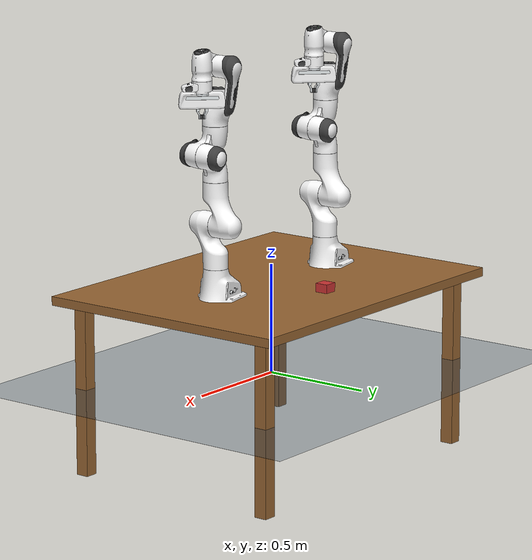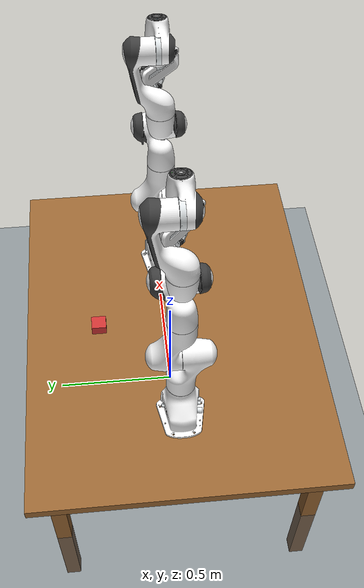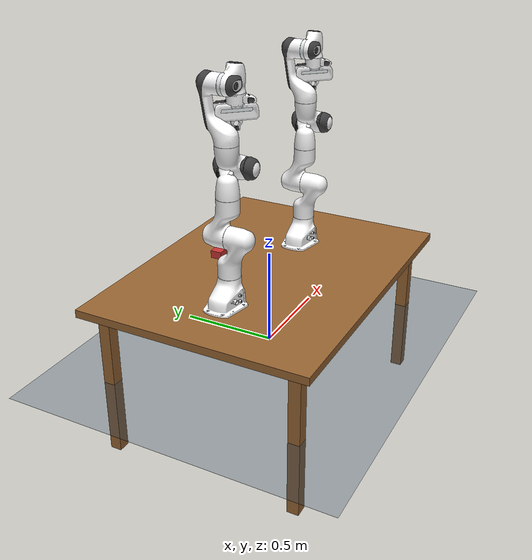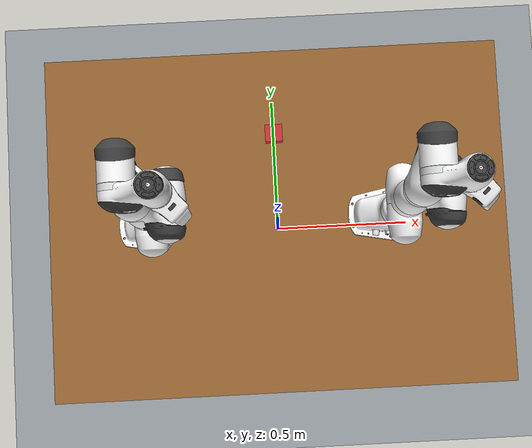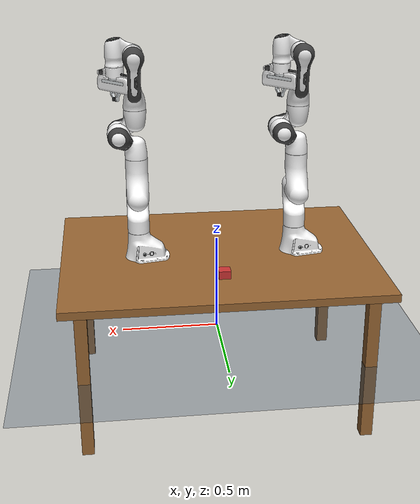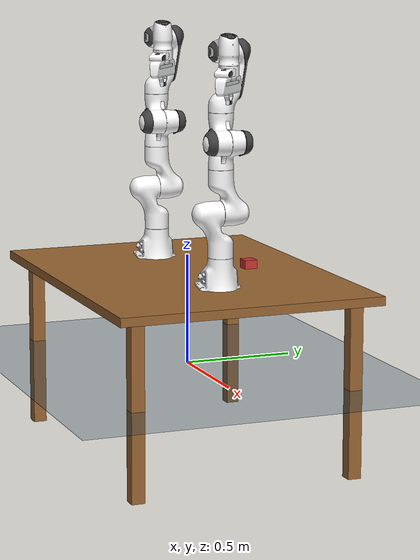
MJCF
<mujoco model="dual_panda_on_table">
  <compiler angle="radian" meshdir="franka_emika_panda/assets" autolimits="true"/>
  <visual>
    <quality shadowsize="2048"/>
    <global offwidth="1920" offheight="1080"/>
    <map znear="0.01" zfar="50"/>
</visual>
  <option integrator="implicitfast" timestep="0.002"/>

  <default>
    <!-- 全局默认 -->
    <default class="panda_arm">
    <material specular="0.5" shininess="0.25"/>
    <joint armature="0.1" damping="1" axis="0 0 1" range="-2.8973 2.8973"/>
    <general dyntype="none" biastype="affine" ctrlrange="-2.8973 2.8973" forcerange="-87 87"/>

    <default class="finger">
      <joint axis="0 1 0" type="slide" range="0 0.04"/>
    </default>

    <default class="visual">
      <geom type="mesh" contype="0" conaffinity="0" group="2"/>
    </default>

    <default class="collision">
      <geom type="mesh" group="3"/>
      <default class="fingertip_pad_collision_1">
        <geom type="box" size="0.0085 0.004 0.0085" pos="0 0.0055 0.0445"/>
      </default>
      <default class="fingertip_pad_collision_2">
        <geom type="box" size="0.003 0.002 0.003" pos="0.0055 0.002 0.05"/>
      </default>
      <default class="fingertip_pad_collision_3">
        <geom type="box" size="0.003 0.002 0.003" pos="-0.0055 0.002 0.05"/>
      </default>
      <default class="fingertip_pad_collision_4">
        <geom type="box" size="0.003 0.002 0.0035" pos="0.0055 0.002 0.0395"/>
      </default>
      <default class="fingertip_pad_collision_5">
        <geom type="box" size="0.003 0.002 0.0035" pos="-0.0055 0.002 0.0395"/>
      </default>
    </default>
  </default>
  </default>

  <asset>
    <!-- 材质 -->
    <material name="white" rgba="1 1 1 1"/>
    <material name="off_white" rgba="0.901961 0.921569 0.929412 1"/>
    <material name="black" rgba="0.25 0.25 0.25 1"/>
    <material name="green" rgba="0 1 0 1"/>
    <material name="light_blue" rgba="0.039216 0.541176 0.780392 1"/>
    <material name="table_mat" rgba="0.6 0.4 0.2 1"/>

    <!-- 注意：所有 mesh 文件必须存在于 models/assets/ 目录 -->
    <!-- 为左右臂共用同一套 mesh（无需复制） -->

    <!-- Collision meshes -->
    <mesh name="link0_c" file="link0.stl"/>
    <mesh name="link1_c" file="link1.stl"/>
    <mesh name="link2_c" file="link2.stl"/>
    <mesh name="link3_c" file="link3.stl"/>
    <mesh name="link4_c" file="link4.stl"/>
    <mesh name="link5_c0" file="link5_collision_0.obj"/>
    <mesh name="link5_c1" file="link5_collision_1.obj"/>
    <mesh name="link5_c2" file="link5_collision_2.obj"/>
    <mesh name="link6_c" file="link6.stl"/>
    <mesh name="link7_c" file="link7.stl"/>
    <mesh name="hand_c" file="hand.stl"/>

    <!-- Visual meshes (共用) -->
    <mesh file="link0_0.obj"/>
    <mesh file="link0_1.obj"/>
    <mesh file="link0_2.obj"/>
    <mesh file="link0_3.obj"/>
    <mesh file="link0_4.obj"/>
    <mesh file="link0_5.obj"/>
    <mesh file="link0_7.obj"/>
    <mesh file="link0_8.obj"/>
    <mesh file="link0_9.obj"/>
    <mesh file="link0_10.obj"/>
    <mesh file="link0_11.obj"/>
    <mesh file="link1.obj"/>
    <mesh file="link2.obj"/>
    <mesh file="link3_0.obj"/>
    <mesh file="link3_1.obj"/>
    <mesh file="link3_2.obj"/>
    <mesh file="link3_3.obj"/>
    <mesh file="link4_0.obj"/>
    <mesh file="link4_1.obj"/>
    <mesh file="link4_2.obj"/>
    <mesh file="link4_3.obj"/>
    <mesh file="link5_0.obj"/>
    <mesh file="link5_1.obj"/>
    <mesh file="link5_2.obj"/>
    <mesh file="link6_0.obj"/>
    <mesh file="link6_1.obj"/>
    <mesh file="link6_2.obj"/>
    <mesh file="link6_3.obj"/>
    <mesh file="link6_4.obj"/>
    <mesh file="link6_5.obj"/>
    <mesh file="link6_6.obj"/>
    <mesh file="link6_7.obj"/>
    <mesh file="link6_8.obj"/>
    <mesh file="link6_9.obj"/>
    <mesh file="link6_10.obj"/>
    <mesh file="link6_11.obj"/>
    <mesh file="link6_12.obj"/>
    <mesh file="link6_13.obj"/>
    <mesh file="link6_14.obj"/>
    <mesh file="link6_15.obj"/>
    <mesh file="link6_16.obj"/>
    <mesh file="link7_0.obj"/>
    <mesh file="link7_1.obj"/>
    <mesh file="link7_2.obj"/>
    <mesh file="link7_3.obj"/>
    <mesh file="link7_4.obj"/>
    <mesh file="link7_5.obj"/>
    <mesh file="link7_6.obj"/>
    <mesh file="link7_7.obj"/>
    <mesh file="hand_0.obj"/>
    <mesh file="hand_1.obj"/>
    <mesh file="hand_2.obj"/>
    <mesh file="hand_3.obj"/>
    <mesh file="hand_4.obj"/>
    <mesh file="finger_0.obj"/>
    <mesh file="finger_1.obj"/>

    <texture name="grid" type="2d" builtin="checker" rgb1=".1 .2 .3" rgb2=".2 .3 .4" width="300" height="300" mark="edge" markrgb=".8 .8 .8"/>
    <material name="grid_mat" texture="grid" texrepeat="1 1" texuniform="true"/>

    <texture name="skybox" type="skybox" builtin="gradient" rgb1=".3 .5 .7" rgb2="0 0 0" width="512" height="512"/>
  </asset>

  <worldbody>
    <!-- 灯光 -->
    <light directional="true" diffuse=".2 .2 .2" specular="0 0 0" pos="0 0 5" dir="0 0 -1"/>

    <light directional="true" diffuse="0.8 0.8 0.8" specular="0.3 0.3 0.3" pos="0 0 4" dir="0 0 -1" castshadow="true"/>

    <light directional="true" diffuse="0.4 0.4 0.4" pos="1 1 3" dir="-1 -1 -1"/>
    <light directional="true" diffuse="0.4 0.4 0.4" pos="-1 1 3" dir="1 -1 -1"/>
    <geom name="floor" pos="0 0 0" size="0 0 .05" type="plane" material="grid_mat"/>

    <!-- 桌子 -->
    <body name="table" pos="0 0 0.4">
      <geom name="table_top" type="box" size="0.8 0.6 0.02" material="table_mat" contype="1" conaffinity="1"/>
      <geom name="leg1" type="box" size="0.03 0.03 0.4" pos="-0.7 -0.5 -0.4" material="table_mat"/>
      <geom name="leg2" type="box" size="0.03 0.03 0.4" pos="0.7 -0.5 -0.4" material="table_mat"/>
      <geom name="leg3" type="box" size="0.03 0.03 0.4" pos="-0.7 0.5 -0.4" material="table_mat"/>
      <geom name="leg4" type="box" size="0.03 0.03 0.4" pos="0.7 0.5 -0.4" material="table_mat"/>
    </body>
    <camera name="track" mode="targetbody" target="table" pos="3 3 20"/>
    <!-- 左臂基座 (x = -0.4, y=0, z=table_top_z=0.42) -->
    <body name="left_link0" pos="-0.4 0 0.42" childclass="panda_arm">
      <inertial mass="0.629769" pos="-0.041018 -0.00014 0.049974"
        fullinertia="0.00315 0.00388 0.004285 8.2904e-7 0.00015 8.2299e-6"/>
      <geom mesh="link0_0" material="off_white" class="visual"/>
      <geom mesh="link0_1" material="black" class="visual"/>
      <geom mesh="link0_2" material="off_white" class="visual"/>
      <geom mesh="link0_3" material="black" class="visual"/>
      <geom mesh="link0_4" material="off_white" class="visual"/>
      <geom mesh="link0_5" material="black" class="visual"/>
      <geom mesh="link0_7" material="white" class="visual"/>
      <geom mesh="link0_8" material="white" class="visual"/>
      <geom mesh="link0_9" material="black" class="visual"/>
      <geom mesh="link0_10" material="off_white" class="visual"/>
      <geom mesh="link0_11" material="white" class="visual"/>
      <geom mesh="link0_c" class="collision"/>
      <body name="left_link1" pos="0 0 0.333">
        <inertial mass="4.970684" pos="0.003875 0.002081 -0.04762"
          fullinertia="0.70337 0.70661 0.0091170 -0.00013900 0.0067720 0.019169"/>
        <joint name="left_joint1"/>
        <geom material="white" mesh="link1" class="visual"/>
        <geom mesh="link1_c" class="collision"/>
        <body name="left_link2" quat="1 -1 0 0">
          <inertial mass="0.646926" pos="-0.003141 -0.02872 0.003495"
            fullinertia="0.0079620 2.8110e-2 2.5995e-2 -3.925e-3 1.0254e-2 7.04e-4"/>
          <joint name="left_joint2" range="-1.7628 1.7628"/>
          <geom material="white" mesh="link2" class="visual"/>
          <geom mesh="link2_c" class="collision"/>
          <body name="left_link3" pos="0 -0.316 0" quat="1 1 0 0">
            <joint name="left_joint3"/>
            <inertial mass="3.228604" pos="2.7518e-2 3.9252e-2 -6.6502e-2"
              fullinertia="3.7242e-2 3.6155e-2 1.083e-2 -4.761e-3 -1.1396e-2 -1.2805e-2"/>
            <geom mesh="link3_0" material="white" class="visual"/>
            <geom mesh="link3_1" material="white" class="visual"/>
            <geom mesh="link3_2" material="white" class="visual"/>
            <geom mesh="link3_3" material="black" class="visual"/>
            <geom mesh="link3_c" class="collision"/>
            <body name="left_link4" pos="0.0825 0 0" quat="1 1 0 0">
              <inertial mass="3.587895" pos="-5.317e-2 1.04419e-1 2.7454e-2"
                fullinertia="2.5853e-2 1.9552e-2 2.8323e-2 7.796e-3 -1.332e-3 8.641e-3"/>
              <joint name="left_joint4" range="-3.0718 -0.0698"/>
              <geom mesh="link4_0" material="white" class="visual"/>
              <geom mesh="link4_1" material="white" class="visual"/>
              <geom mesh="link4_2" material="black" class="visual"/>
              <geom mesh="link4_3" material="white" class="visual"/>
              <geom mesh="link4_c" class="collision"/>
              <body name="left_link5" pos="-0.0825 0.384 0" quat="1 -1 0 0">
                <inertial mass="1.225946" pos="-1.1953e-2 4.1065e-2 -3.8437e-2"
                  fullinertia="3.5549e-2 2.9474e-2 8.627e-3 -2.117e-3 -4.037e-3 2.29e-4"/>
                <joint name="left_joint5"/>
                <geom mesh="link5_0" material="black" class="visual"/>
                <geom mesh="link5_1" material="white" class="visual"/>
                <geom mesh="link5_2" material="white" class="visual"/>
                <geom mesh="link5_c0" class="collision"/>
                <geom mesh="link5_c1" class="collision"/>
                <geom mesh="link5_c2" class="collision"/>
                <body name="left_link6" quat="1 1 0 0">
                  <inertial mass="1.666555" pos="6.0149e-2 -1.4117e-2 -1.0517e-2"
                    fullinertia="1.964e-3 4.354e-3 5.433e-3 1.09e-4 -1.158e-3 3.41e-4"/>
                  <joint name="left_joint6" range="-0.0175 3.7525"/>
                  <geom mesh="link6_0" material="off_white" class="visual"/>
                  <geom mesh="link6_1" material="white" class="visual"/>
                  <geom mesh="link6_2" material="black" class="visual"/>
                  <geom mesh="link6_3" material="white" class="visual"/>
                  <geom mesh="link6_4" material="white" class="visual"/>
                  <geom mesh="link6_5" material="white" class="visual"/>
                  <geom mesh="link6_6" material="white" class="visual"/>
                  <geom mesh="link6_7" material="light_blue" class="visual"/>
                  <geom mesh="link6_8" material="light_blue" class="visual"/>
                  <geom mesh="link6_9" material="black" class="visual"/>
                  <geom mesh="link6_10" material="black" class="visual"/>
                  <geom mesh="link6_11" material="white" class="visual"/>
                  <geom mesh="link6_12" material="green" class="visual"/>
                  <geom mesh="link6_13" material="white" class="visual"/>
                  <geom mesh="link6_14" material="black" class="visual"/>
                  <geom mesh="link6_15" material="black" class="visual"/>
                  <geom mesh="link6_16" material="white" class="visual"/>
                  <geom mesh="link6_c" class="collision"/>
                  <body name="left_link7" pos="0.088 0 0" quat="1 1 0 0">
                    <inertial mass="7.35522e-01" pos="1.0517e-2 -4.252e-3 6.1597e-2"
                      fullinertia="1.2516e-2 1.0027e-2 4.815e-3 -4.28e-4 -1.196e-3 -7.41e-4"/>
                    <joint name="left_joint7"/>
                    <geom mesh="link7_0" material="white" class="visual"/>
                    <geom mesh="link7_1" material="black" class="visual"/>
                    <geom mesh="link7_2" material="black" class="visual"/>
                    <geom mesh="link7_3" material="black" class="visual"/>
                    <geom mesh="link7_4" material="black" class="visual"/>
                    <geom mesh="link7_5" material="black" class="visual"/>
                    <geom mesh="link7_6" material="black" class="visual"/>
                    <geom mesh="link7_7" material="white" class="visual"/>
                    <geom mesh="link7_c" class="collision"/>
                    <body name="left_hand" pos="0 0 0.107" quat="0.9238795 0 0 -0.3826834">
                      <inertial mass="0.73" pos="-0.01 0 0.03" diaginertia="0.001 0.0025 0.0017"/>
                      <geom mesh="hand_0" material="off_white" class="visual"/>
                      <geom mesh="hand_1" material="black" class="visual"/>
                      <geom mesh="hand_2" material="black" class="visual"/>
                      <geom mesh="hand_3" material="white" class="visual"/>
                      <geom mesh="hand_4" material="off_white" class="visual"/>
                      <geom mesh="hand_c" class="collision"/>
                      <body name="left_left_finger" pos="0 0 0.0584">
                        <inertial mass="0.015" pos="0 0 0" diaginertia="2.375e-6 2.375e-6 7.5e-7"/>
                        <joint name="left_finger_joint1" class="finger"/>
                        <geom mesh="finger_0" material="off_white" class="visual"/>
                        <geom mesh="finger_1" material="black" class="visual"/>
                        <geom mesh="finger_0" class="collision"/>
                        <geom class="fingertip_pad_collision_1"/>
                        <geom class="fingertip_pad_collision_2"/>
                        <geom class="fingertip_pad_collision_3"/>
                        <geom class="fingertip_pad_collision_4"/>
                        <geom class="fingertip_pad_collision_5"/>
                      </body>
                      <body name="left_right_finger" pos="0 0 0.0584" quat="0 0 0 1">
                        <inertial mass="0.015" pos="0 0 0" diaginertia="2.375e-6 2.375e-6 7.5e-7"/>
                        <joint name="left_finger_joint2" class="finger"/>
                        <geom mesh="finger_0" material="off_white" class="visual"/>
                        <geom mesh="finger_1" material="black" class="visual"/>
                        <geom mesh="finger_0" class="collision"/>
                        <geom class="fingertip_pad_collision_1"/>
                        <geom class="fingertip_pad_collision_2"/>
                        <geom class="fingertip_pad_collision_3"/>
                        <geom class="fingertip_pad_collision_4"/>
                        <geom class="fingertip_pad_collision_5"/>
                      </body>
                    </body>
                  </body>
                </body>
              </body>
            </body>
          </body>
        </body>
      </body>
    </body>

    <!-- 右臂基座 (x = +0.4, y=0, z=0.42) -->
    <body name="right_link0" pos="0.4 0 0.42" childclass="panda_arm">
      <inertial mass="0.629769" pos="-0.041018 -0.00014 0.049974"
        fullinertia="0.00315 0.00388 0.004285 8.2904e-7 0.00015 8.2299e-6"/>
      <geom mesh="link0_0" material="off_white" class="visual"/>
      <geom mesh="link0_1" material="black" class="visual"/>
      <geom mesh="link0_2" material="off_white" class="visual"/>
      <geom mesh="link0_3" material="black" class="visual"/>
      <geom mesh="link0_4" material="off_white" class="visual"/>
      <geom mesh="link0_5" material="black" class="visual"/>
      <geom mesh="link0_7" material="white" class="visual"/>
      <geom mesh="link0_8" material="white" class="visual"/>
      <geom mesh="link0_9" material="black" class="visual"/>
      <geom mesh="link0_10" material="off_white" class="visual"/>
      <geom mesh="link0_11" material="white" class="visual"/>
      <geom mesh="link0_c" class="collision"/>
      <body name="right_link1" pos="0 0 0.333">
        <inertial mass="4.970684" pos="0.003875 0.002081 -0.04762"
          fullinertia="0.70337 0.70661 0.0091170 -0.00013900 0.0067720 0.019169"/>
        <joint name="right_joint1"/>
        <geom material="white" mesh="link1" class="visual"/>
        <geom mesh="link1_c" class="collision"/>
        <body name="right_link2" quat="1 -1 0 0">
          <inertial mass="0.646926" pos="-0.003141 -0.02872 0.003495"
            fullinertia="0.0079620 2.8110e-2 2.5995e-2 -3.925e-3 1.0254e-2 7.04e-4"/>
          <joint name="right_joint2" range="-1.7628 1.7628"/>
          <geom material="white" mesh="link2" class="visual"/>
          <geom mesh="link2_c" class="collision"/>
          <body name="right_link3" pos="0 -0.316 0" quat="1 1 0 0">
            <joint name="right_joint3"/>
            <inertial mass="3.228604" pos="2.7518e-2 3.9252e-2 -6.6502e-2"
              fullinertia="3.7242e-2 3.6155e-2 1.083e-2 -4.761e-3 -1.1396e-2 -1.2805e-2"/>
            <geom mesh="link3_0" material="white" class="visual"/>
            <geom mesh="link3_1" material="white" class="visual"/>
            <geom mesh="link3_2" material="white" class="visual"/>
            <geom mesh="link3_3" material="black" class="visual"/>
            <geom mesh="link3_c" class="collision"/>
            <body name="right_link4" pos="0.0825 0 0" quat="1 1 0 0">
              <inertial mass="3.587895" pos="-5.317e-2 1.04419e-1 2.7454e-2"
                fullinertia="2.5853e-2 1.9552e-2 2.8323e-2 7.796e-3 -1.332e-3 8.641e-3"/>
              <joint name="right_joint4" range="-3.0718 -0.0698"/>
              <geom mesh="link4_0" material="white" class="visual"/>
              <geom mesh="link4_1" material="white" class="visual"/>
              <geom mesh="link4_2" material="black" class="visual"/>
              <geom mesh="link4_3" material="white" class="visual"/>
              <geom mesh="link4_c" class="collision"/>
              <body name="right_link5" pos="-0.0825 0.384 0" quat="1 -1 0 0">
                <inertial mass="1.225946" pos="-1.1953e-2 4.1065e-2 -3.8437e-2"
                  fullinertia="3.5549e-2 2.9474e-2 8.627e-3 -2.117e-3 -4.037e-3 2.29e-4"/>
                <joint name="right_joint5"/>
                <geom mesh="link5_0" material="black" class="visual"/>
                <geom mesh="link5_1" material="white" class="visual"/>
                <geom mesh="link5_2" material="white" class="visual"/>
                <geom mesh="link5_c0" class="collision"/>
                <geom mesh="link5_c1" class="collision"/>
                <geom mesh="link5_c2" class="collision"/>
                <body name="right_link6" quat="1 1 0 0">
                  <inertial mass="1.666555" pos="6.0149e-2 -1.4117e-2 -1.0517e-2"
                    fullinertia="1.964e-3 4.354e-3 5.433e-3 1.09e-4 -1.158e-3 3.41e-4"/>
                  <joint name="right_joint6" range="-0.0175 3.7525"/>
                  <geom mesh="link6_0" material="off_white" class="visual"/>
                  <geom mesh="link6_1" material="white" class="visual"/>
                  <geom mesh="link6_2" material="black" class="visual"/>
                  <geom mesh="link6_3" material="white" class="visual"/>
                  <geom mesh="link6_4" material="white" class="visual"/>
                  <geom mesh="link6_5" material="white" class="visual"/>
                  <geom mesh="link6_6" material="white" class="visual"/>
                  <geom mesh="link6_7" material="light_blue" class="visual"/>
                  <geom mesh="link6_8" material="light_blue" class="visual"/>
                  <geom mesh="link6_9" material="black" class="visual"/>
                  <geom mesh="link6_10" material="black" class="visual"/>
                  <geom mesh="link6_11" material="white" class="visual"/>
                  <geom mesh="link6_12" material="green" class="visual"/>
                  <geom mesh="link6_13" material="white" class="visual"/>
                  <geom mesh="link6_14" material="black" class="visual"/>
                  <geom mesh="link6_15" material="black" class="visual"/>
                  <geom mesh="link6_16" material="white" class="visual"/>
                  <geom mesh="link6_c" class="collision"/>
                  <body name="right_link7" pos="0.088 0 0" quat="1 1 0 0">
                    <inertial mass="7.35522e-01" pos="1.0517e-2 -4.252e-3 6.1597e-2"
                      fullinertia="1.2516e-2 1.0027e-2 4.815e-3 -4.28e-4 -1.196e-3 -7.41e-4"/>
                    <joint name="right_joint7"/>
                    <geom mesh="link7_0" material="white" class="visual"/>
                    <geom mesh="link7_1" material="black" class="visual"/>
                    <geom mesh="link7_2" material="black" class="visual"/>
                    <geom mesh="link7_3" material="black" class="visual"/>
                    <geom mesh="link7_4" material="black" class="visual"/>
                    <geom mesh="link7_5" material="black" class="visual"/>
                    <geom mesh="link7_6" material="black" class="visual"/>
                    <geom mesh="link7_7" material="white" class="visual"/>
                    <geom mesh="link7_c" class="collision"/>
                    <body name="right_hand" pos="0 0 0.107" quat="0.9238795 0 0 -0.3826834">
                      <inertial mass="0.73" pos="-0.01 0 0.03" diaginertia="0.001 0.0025 0.0017"/>
                      <geom mesh="hand_0" material="off_white" class="visual"/>
                      <geom mesh="hand_1" material="black" class="visual"/>
                      <geom mesh="hand_2" material="black" class="visual"/>
                      <geom mesh="hand_3" material="white" class="visual"/>
                      <geom mesh="hand_4" material="off_white" class="visual"/>
                      <geom mesh="hand_c" class="collision"/>
                      <body name="right_left_finger" pos="0 0 0.0584">
                        <inertial mass="0.015" pos="0 0 0" diaginertia="2.375e-6 2.375e-6 7.5e-7"/>
                        <joint name="right_finger_joint1" class="finger"/>
                        <geom mesh="finger_0" material="off_white" class="visual"/>
                        <geom mesh="finger_1" material="black" class="visual"/>
                        <geom mesh="finger_0" class="collision"/>
                        <geom class="fingertip_pad_collision_1"/>
                        <geom class="fingertip_pad_collision_2"/>
                        <geom class="fingertip_pad_collision_3"/>
                        <geom class="fingertip_pad_collision_4"/>
                        <geom class="fingertip_pad_collision_5"/>
                      </body>
                      <body name="right_right_finger" pos="0 0 0.0584" quat="0 0 0 1">
                        <inertial mass="0.015" pos="0 0 0" diaginertia="2.375e-6 2.375e-6 7.5e-7"/>
                        <joint name="right_finger_joint2" class="finger"/>
                        <geom mesh="finger_0" material="off_white" class="visual"/>
                        <geom mesh="finger_1" material="black" class="visual"/>
                        <geom mesh="finger_0" class="collision"/>
                        <geom class="fingertip_pad_collision_1"/>
                        <geom class="fingertip_pad_collision_2"/>
                        <geom class="fingertip_pad_collision_3"/>
                        <geom class="fingertip_pad_collision_4"/>
                        <geom class="fingertip_pad_collision_5"/>
                      </body>
                    </body>
                  </body>
                </body>
              </body>
            </body>
          </body>
        </body>
      </body>
    </body>

    <!-- 中间放一个小物体（可选） -->
    <body name="object" pos="0 0.3 0.43">
      <geom type="box" size="0.03 0.03 0.03" rgba="0.8 0.2 0.2 1" contype="1" conaffinity="1"/>
    </body>
  </worldbody>

  <!-- Tendons -->
  <tendon>
    <fixed name="left_split">
      <joint joint="left_finger_joint1" coef="0.5"/>
      <joint joint="left_finger_joint2" coef="0.5"/>
    </fixed>
    <fixed name="right_split">
      <joint joint="right_finger_joint1" coef="0.5"/>
      <joint joint="right_finger_joint2" coef="0.5"/>
    </fixed>
  </tendon>

  <!-- Equality constraints -->
  <equality>
    <joint joint1="left_finger_joint1" joint2="left_finger_joint2" solimp="0.95 0.99 0.001" solref="0.005 1"/>
    <joint joint1="right_finger_joint1" joint2="right_finger_joint2" solimp="0.95 0.99 0.001" solref="0.005 1"/>
  </equality>

  <!-- Actuators -->
  <actuator>
    <!-- Left arm -->
    <general class="panda_arm" name="left_actuator1" joint="left_joint1" gainprm="4500" biasprm="0 -4500 -450"/>
    <general class="panda_arm" name="left_actuator2" joint="left_joint2" gainprm="4500" biasprm="0 -4500 -450" ctrlrange="-1.7628 1.7628"/>
    <general class="panda_arm" name="left_actuator3" joint="left_joint3" gainprm="3500" biasprm="0 -3500 -350"/>
    <general class="panda_arm" name="left_actuator4" joint="left_joint4" gainprm="3500" biasprm="0 -3500 -350" ctrlrange="-3.0718 -0.0698"/>
    <general class="panda_arm" name="left_actuator5" joint="left_joint5" gainprm="2000" biasprm="0 -2000 -200" forcerange="-12 12"/>
    <general class="panda_arm" name="left_actuator6" joint="left_joint6" gainprm="2000" biasprm="0 -2000 -200" forcerange="-12 12" ctrlrange="-0.0175 3.7525"/>
    <general class="panda_arm" name="left_actuator7" joint="left_joint7" gainprm="2000" biasprm="0 -2000 -200" forcerange="-12 12"/>
    <general class="panda_arm" name="left_actuator8" tendon="left_split" forcerange="-100 100" ctrlrange="0 255" gainprm="0.01568627451 0 0" biasprm="0 -100 -10"/>

    <!-- Right arm -->
    <general class="panda_arm" name="right_actuator1" joint="right_joint1" gainprm="4500" biasprm="0 -4500 -450"/>
    <general class="panda_arm" name="right_actuator2" joint="right_joint2" gainprm="4500" biasprm="0 -4500 -450" ctrlrange="-1.7628 1.7628"/>
    <general class="panda_arm" name="right_actuator3" joint="right_joint3" gainprm="3500" biasprm="0 -3500 -350"/>
    <general class="panda_arm" name="right_actuator4" joint="right_joint4" gainprm="3500" biasprm="0 -3500 -350" ctrlrange="-3.0718 -0.0698"/>
    <general class="panda_arm" name="right_actuator5" joint="right_joint5" gainprm="2000" biasprm="0 -2000 -200" forcerange="-12 12"/>
    <general class="panda_arm" name="right_actuator6" joint="right_joint6" gainprm="2000" biasprm="0 -2000 -200" forcerange="-12 12" ctrlrange="-0.0175 3.7525"/>
    <general class="panda_arm" name="right_actuator7" joint="right_joint7" gainprm="2000" biasprm="0 -2000 -200" forcerange="-12 12"/>
    <general class="panda_arm" name="right_actuator8" tendon="right_split" forcerange="-100 100" ctrlrange="0 255" gainprm="0.01568627451 0 0" biasprm="0 -100 -10"/>
  </actuator>

  <!-- Keyframes -->
  <keyframe>
    <key name="home_left" qpos="0 0 0 -1.57079 0 1.57079 -0.7853 0.04 0.04 0 0 0 -1.57079 0 1.57079 -0.7853 0.04 0.04" ctrl="0 0 0 -1.57079 0 1.57079 -0.7853 255 0 0 0 -1.57079 0 1.57079 -0.7853 255"/>
  </keyframe>

</mujoco>
